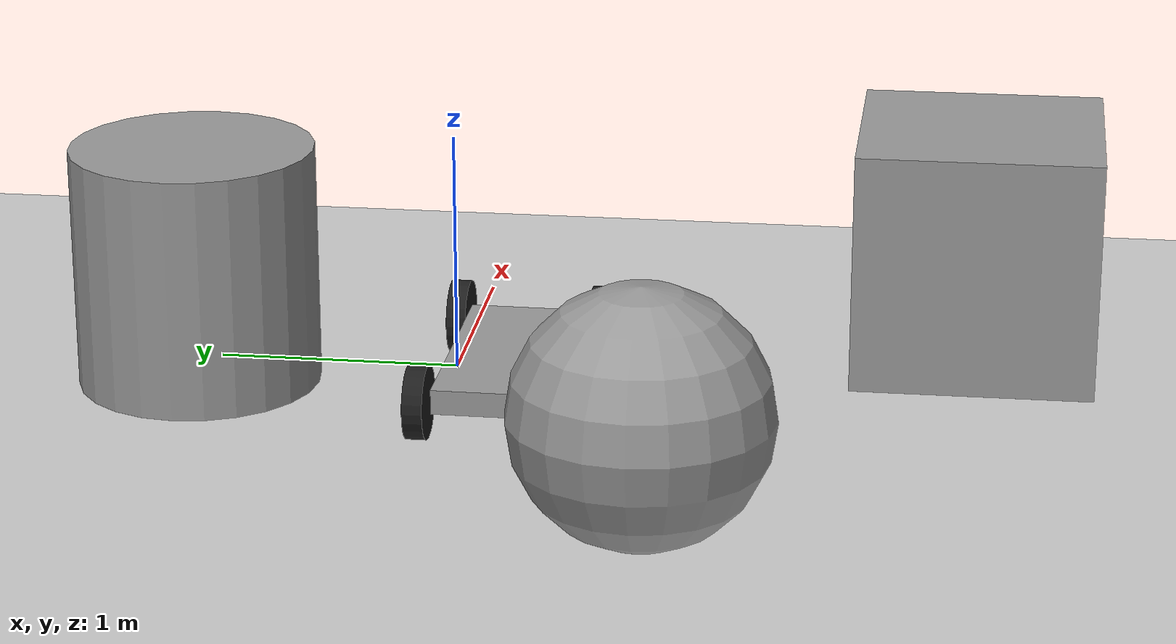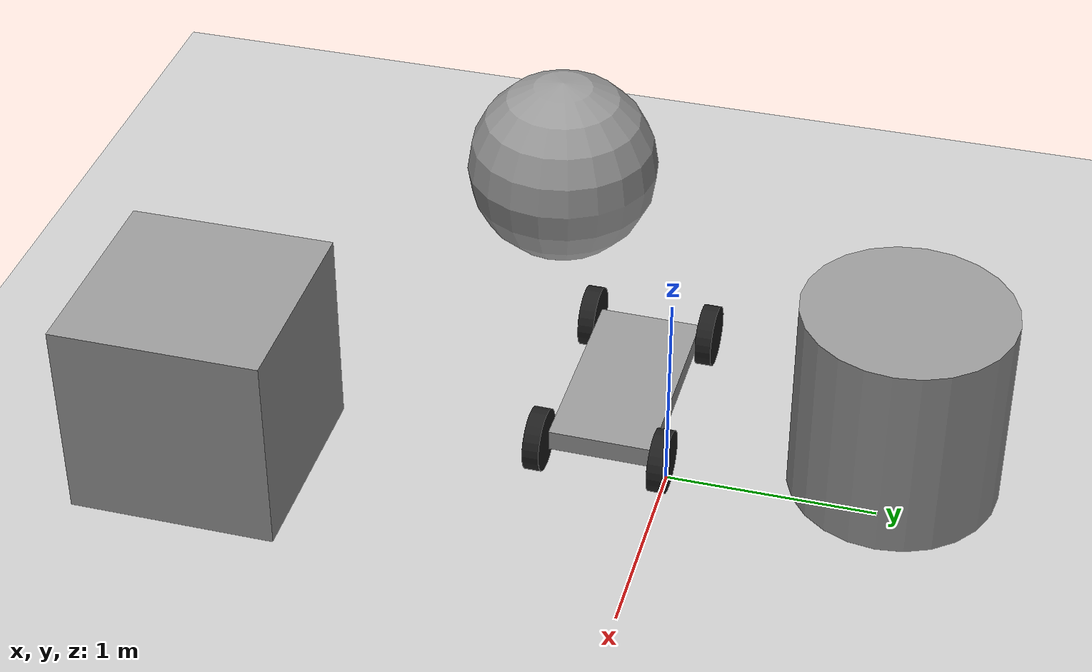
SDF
<sdf version="1.7">
 <world name="default">
  <light name="sun" type="directional">
   <pose>0 0 10 0 -0 0</pose>
   <diffuse>0.8 0.8 0.8 1</diffuse>
   <specular>0.2 0.2 0.2 1</specular>
   <attenuation>
    <range>1000</range>
    <constant>0.9</constant>
    <linear>0.01</linear>
    <quadratic>0.001</quadratic>
   </attenuation>
   <direction>-0.5 0.1 -0.9</direction>
   <spot><inner_angle>0</inner_angle><outer_angle>0</outer_angle><falloff>0</falloff></spot>
  </light>
  <model name="ground_plane">
   <static>1</static>
   <link name="link">
    <collision name="collision">
     <geometry><plane><normal>0 0 1</normal><size>100 100</size></plane></geometry>
     <surface><friction><ode><mu>100</mu><mu2>50</mu2></ode></friction></surface>
    </collision>
    <visual name="visual">
     <cast_shadows>0</cast_shadows>
     <geometry><plane><normal>0 0 1</normal><size>100 100</size></plane></geometry>
     <material>
      <script><uri>file://media/materials/scripts/gazebo.material</uri><name>Gazebo/Grey</name></script>
     </material>
    </visual>
   </link>
  </model>
  <gravity>0 0 -9.8</gravity>
  <magnetic_field>6e-06 2.3e-05 -4.2e-05</magnetic_field>
  <atmosphere type="adiabatic"/>
  <physics type="ode">
   <max_step_size>0.001</max_step_size>
   <real_time_factor>1</real_time_factor>
   <real_time_update_rate>1000</real_time_update_rate>
  </physics>
  <scene><ambient>0.4 0.4 0.4 1</ambient><background>0.7 0.7 0.7 1</background><shadows>1</shadows></scene>
  <spherical_coordinates>
   <surface_model>EARTH_WGS84</surface_model>
   <latitude_deg>0</latitude_deg>
   <longitude_deg>0</longitude_deg>
   <elevation>0</elevation>
   <heading_deg>0</heading_deg>
  </spherical_coordinates>
  <model name="cart_soft_suspension">
   <link name="chassis">
    <pose>0 0 0.15 0 -0 0</pose>
    <inertial>
     <pose>0.1 0 0 0 -0 0</pose>
     <mass>10</mass>
     <inertia>
      <ixx>0.216667</ixx>
      <iyy>0.841667</iyy>
      <izz>1.04167</izz>
      <ixy>0</ixy>
      <ixz>0</ixz>
      <iyz>0</iyz>
     </inertia>
    </inertial>
    <collision name="collision"><geometry><box><size>1 0.5 0.1</size></box></geometry></collision>
    <visual name="visual">
     <geometry><box><size>1 0.5 0.1</size></box></geometry>
     <material>
      <script><uri>file://media/materials/scripts/gazebo.material</uri><name>Gazebo/Grey</name></script>
     </material>
    </visual>
   </link>
   <link name="susp_front_right">
    <pose>0.5 -0.298 0.15 0 -0 0</pose>
    <inertial>
     <mass>0.5</mass>
     <inertia>
      <ixx>0.000208333</ixx>
      <iyy>0.000208333</iyy>
      <izz>0.000208333</izz>
      <ixy>0</ixy>
      <ixz>0</ixz>
      <iyz>0</iyz>
     </inertia>
    </inertial>
    <collision name="collision"><geometry><box><size>0.05 0.05 0.05</size></box></geometry></collision>
    <visual name="visual">
     <geometry><box><size>0.05 0.05 0.05</size></box></geometry>
     <material>
      <script><uri>file://media/materials/scripts/gazebo.material</uri><name>Gazebo/Black</name></script>
     </material>
    </visual>
   </link>
   <joint name="susp_front_right_prismatic" type="prismatic">
    <parent>chassis</parent>
    <child>susp_front_right</child>
    <axis>
     <xyz>0 0 -1</xyz>
     <limit><lower>-0.0375</lower><upper>0.0375</upper></limit>
     <dynamics>
      <damping>100</damping>
      <spring_stiffness>2500</spring_stiffness>
      <spring_reference>0.05</spring_reference>
     </dynamics>
    </axis>
    <physics>
     <ode><implicit_spring_damper>1</implicit_spring_damper><limit><cfm>0</cfm><erp>0.2</erp></limit></ode>
    </physics>
   </joint>
   <link name="wheel_front_right">
    <pose>0.5 -0.298 0.15 -1.5708 0 0</pose>
    <inertial>
     <mass>0.5</mass>
     <inertia>
      <ixx>0.00307917</ixx>
      <iyy>0.00307917</iyy>
      <izz>0.005625</izz>
      <ixy>0</ixy>
      <ixz>0</ixz>
      <iyz>0</iyz>
     </inertia>
    </inertial>
    <collision name="collision">
     <geometry><cylinder><radius>0.15</radius><length>0.08</length></cylinder></geometry>
    </collision>
    <visual name="visual">
     <geometry><cylinder><radius>0.15</radius><length>0.08</length></cylinder></geometry>
     <material>
      <script><uri>file://media/materials/scripts/gazebo.material</uri><name>Gazebo/Black</name></script>
     </material>
    </visual>
   </link>
   <joint name="wheel_front_right_spin" type="revolute">
    <parent>susp_front_right</parent>
    <child>wheel_front_right</child>
    <axis>
     <xyz>0 0 1</xyz>
     <limit><lower>-1e+16</lower><upper>1e+16</upper></limit>
     <dynamics><spring_reference>0</spring_reference><spring_stiffness>0</spring_stiffness></dynamics>
    </axis>
   </joint>
   <link name="susp_front_left">
    <pose>0.5 0.298 0.15 0 -0 0</pose>
    <inertial>
     <mass>0.5</mass>
     <inertia>
      <ixx>0.000208333</ixx>
      <iyy>0.000208333</iyy>
      <izz>0.000208333</izz>
      <ixy>0</ixy>
      <ixz>0</ixz>
      <iyz>0</iyz>
     </inertia>
    </inertial>
    <collision name="collision"><geometry><box><size>0.05 0.05 0.05</size></box></geometry></collision>
    <visual name="visual">
     <geometry><box><size>0.05 0.05 0.05</size></box></geometry>
     <material>
      <script><uri>file://media/materials/scripts/gazebo.material</uri><name>Gazebo/Black</name></script>
     </material>
    </visual>
   </link>
   <joint name="susp_front_left_prismatic" type="prismatic">
    <parent>chassis</parent>
    <child>susp_front_left</child>
    <axis>
     <xyz>0 0 -1</xyz>
     <limit><lower>-0.0375</lower><upper>0.0375</upper></limit>
     <dynamics>
      <damping>100</damping>
      <spring_stiffness>2500</spring_stiffness>
      <spring_reference>0.05</spring_reference>
     </dynamics>
    </axis>
    <physics>
     <ode><implicit_spring_damper>1</implicit_spring_damper><limit><cfm>0</cfm><erp>0.2</erp></limit></ode>
    </physics>
   </joint>
   <link name="wheel_front_left">
    <pose>0.5 0.298 0.15 -1.5708 0 0</pose>
    <inertial>
     <mass>0.5</mass>
     <inertia>
      <ixx>0.00307917</ixx>
      <iyy>0.00307917</iyy>
      <izz>0.005625</izz>
      <ixy>0</ixy>
      <ixz>0</ixz>
      <iyz>0</iyz>
     </inertia>
    </inertial>
    <collision name="collision">
     <geometry><cylinder><radius>0.15</radius><length>0.08</length></cylinder></geometry>
    </collision>
    <visual name="visual">
     <geometry><cylinder><radius>0.15</radius><length>0.08</length></cylinder></geometry>
     <material>
      <script><uri>file://media/materials/scripts/gazebo.material</uri><name>Gazebo/Black</name></script>
     </material>
    </visual>
   </link>
   <joint name="wheel_front_left_spin" type="revolute">
    <parent>susp_front_left</parent>
    <child>wheel_front_left</child>
    <axis>
     <xyz>0 0 1</xyz>
     <limit><lower>-1e+16</lower><upper>1e+16</upper></limit>
     <dynamics><spring_reference>0</spring_reference><spring_stiffness>0</spring_stiffness></dynamics>
    </axis>
   </joint>
   <link name="susp_rear_right">
    <pose>-0.5 -0.298 0.15 0 -0 0</pose>
    <inertial>
     <mass>0.5</mass>
     <inertia>
      <ixx>0.000208333</ixx>
      <iyy>0.000208333</iyy>
      <izz>0.000208333</izz>
      <ixy>0</ixy>
      <ixz>0</ixz>
      <iyz>0</iyz>
     </inertia>
    </inertial>
    <collision name="collision"><geometry><box><size>0.05 0.05 0.05</size></box></geometry></collision>
    <visual name="visual">
     <geometry><box><size>0.05 0.05 0.05</size></box></geometry>
     <material>
      <script><uri>file://media/materials/scripts/gazebo.material</uri><name>Gazebo/Black</name></script>
     </material>
    </visual>
   </link>
   <joint name="susp_rear_right_prismatic" type="prismatic">
    <parent>chassis</parent>
    <child>susp_rear_right</child>
    <axis>
     <xyz>0 0 -1</xyz>
     <limit><lower>-0.0375</lower><upper>0.0375</upper></limit>
     <dynamics>
      <damping>100</damping>
      <spring_stiffness>2500</spring_stiffness>
      <spring_reference>0.05</spring_reference>
     </dynamics>
    </axis>
    <physics>
     <ode><implicit_spring_damper>1</implicit_spring_damper><limit><cfm>0</cfm><erp>0.2</erp></limit></ode>
    </physics>
   </joint>
   <link name="wheel_rear_right">
    <pose>-0.5 -0.298 0.15 -1.5708 0 0</pose>
    <inertial>
     <mass>0.5</mass>
     <inertia>
      <ixx>0.00307917</ixx>
      <iyy>0.00307917</iyy>
      <izz>0.005625</izz>
      <ixy>0</ixy>
      <ixz>0</ixz>
      <iyz>0</iyz>
     </inertia>
    </inertial>
    <collision name="collision">
     <geometry><cylinder><radius>0.15</radius><length>0.08</length></cylinder></geometry>
    </collision>
    <visual name="visual">
     <geometry><cylinder><radius>0.15</radius><length>0.08</length></cylinder></geometry>
     <material>
      <script><uri>file://media/materials/scripts/gazebo.material</uri><name>Gazebo/Black</name></script>
     </material>
    </visual>
   </link>
   <joint name="wheel_rear_right_spin" type="revolute">
    <parent>susp_rear_right</parent>
    <child>wheel_rear_right</child>
    <axis>
     <xyz>0 0 1</xyz>
     <limit><lower>-1e+16</lower><upper>1e+16</upper></limit>
     <dynamics><spring_reference>0</spring_reference><spring_stiffness>0</spring_stiffness></dynamics>
    </axis>
   </joint>
   <link name="susp_rear_left">
    <pose>-0.5 0.298 0.15 0 -0 0</pose>
    <inertial>
     <mass>0.5</mass>
     <inertia>
      <ixx>0.000208333</ixx>
      <iyy>0.000208333</iyy>
      <izz>0.000208333</izz>
      <ixy>0</ixy>
      <ixz>0</ixz>
      <iyz>0</iyz>
     </inertia>
    </inertial>
    <collision name="collision"><geometry><box><size>0.05 0.05 0.05</size></box></geometry></collision>
    <visual name="visual">
     <geometry><box><size>0.05 0.05 0.05</size></box></geometry>
     <material>
      <script><uri>file://media/materials/scripts/gazebo.material</uri><name>Gazebo/Black</name></script>
     </material>
    </visual>
   </link>
   <joint name="susp_rear_left_prismatic" type="prismatic">
    <parent>chassis</parent>
    <child>susp_rear_left</child>
    <axis>
     <xyz>0 0 -1</xyz>
     <limit><lower>-0.0375</lower><upper>0.0375</upper></limit>
     <dynamics>
      <damping>100</damping>
      <spring_stiffness>2500</spring_stiffness>
      <spring_reference>0.05</spring_reference>
     </dynamics>
    </axis>
    <physics>
     <ode><implicit_spring_damper>1</implicit_spring_damper><limit><cfm>0</cfm><erp>0.2</erp></limit></ode>
    </physics>
   </joint>
   <link name="wheel_rear_left">
    <pose>-0.5 0.298 0.15 -1.5708 0 0</pose>
    <inertial>
     <mass>0.5</mass>
     <inertia>
      <ixx>0.00307917</ixx>
      <iyy>0.00307917</iyy>
      <izz>0.005625</izz>
      <ixy>0</ixy>
      <ixz>0</ixz>
      <iyz>0</iyz>
     </inertia>
    </inertial>
    <collision name="collision">
     <geometry><cylinder><radius>0.15</radius><length>0.08</length></cylinder></geometry>
    </collision>
    <visual name="visual">
     <geometry><cylinder><radius>0.15</radius><length>0.08</length></cylinder></geometry>
     <material>
      <script><uri>file://media/materials/scripts/gazebo.material</uri><name>Gazebo/Black</name></script>
     </material>
    </visual>
   </link>
   <joint name="wheel_rear_left_spin" type="revolute">
    <parent>susp_rear_left</parent>
    <child>wheel_rear_left</child>
    <axis>
     <xyz>0 0 1</xyz>
     <limit><lower>-1e+16</lower><upper>1e+16</upper></limit>
     <dynamics><spring_reference>0</spring_reference><spring_stiffness>0</spring_stiffness></dynamics>
    </axis>
   </joint>
   <pose>-0.394276 -0.296585 0.03745 0.00021 8.1e-05 -0.008026</pose>
  </model>
  <model name="unit_sphere">
   <pose>-1.72311 -0.966328 0.5 0 -0 0</pose>
   <link name="link">
    <inertial>
     <mass>1</mass>
     <inertia><ixx>0.1</ixx><ixy>0</ixy><ixz>0</ixz><iyy>0.1</iyy><iyz>0</iyz><izz>0.1</izz></inertia>
    </inertial>
    <collision name="collision"><geometry><sphere><radius>0.5</radius></sphere></geometry></collision>
    <visual name="visual">
     <geometry><sphere><radius>0.5</radius></sphere></geometry>
     <material>
      <script><name>Gazebo/Grey</name><uri>file://media/materials/scripts/gazebo.material</uri></script>
     </material>
    </visual>
   </link>
  </model>
  <model name="unit_cylinder">
   <pose>-0.253748 1.03554 0.499993 -3e-06 -4e-06 -0</pose>
   <link name="link">
    <inertial>
     <mass>1</mass>
     <inertia><ixx>0.145833</ixx><ixy>0</ixy><ixz>0</ixz><iyy>0.145833</iyy><iyz>0</iyz><izz>0.125</izz></inertia>
    </inertial>
    <collision name="collision">
     <geometry><cylinder><radius>0.5</radius><length>1</length></cylinder></geometry>
    </collision>
    <visual name="visual">
     <geometry><cylinder><radius>0.5</radius><length>1</length></cylinder></geometry>
     <material>
      <script><name>Gazebo/Grey</name><uri>file://media/materials/scripts/gazebo.material</uri></script>
     </material>
    </visual>
   </link>
  </model>
  <model name="unit_box">
   <pose>0.419424 -2.13992 0.5 0 -0 0</pose>
   <link name="link">
    <inertial>
     <mass>1</mass>
     <inertia>
      <ixx>0.166667</ixx>
      <ixy>0</ixy>
      <ixz>0</ixz>
      <iyy>0.166667</iyy>
      <iyz>0</iyz>
      <izz>0.166667</izz>
     </inertia>
    </inertial>
    <collision name="collision"><geometry><box><size>1 1 1</size></box></geometry></collision>
    <visual name="visual">
     <geometry><box><size>1 1 1</size></box></geometry>
     <material>
      <script><name>Gazebo/Grey</name><uri>file://media/materials/scripts/gazebo.material</uri></script>
     </material>
    </visual>
   </link>
  </model>
 </world>
</sdf>
